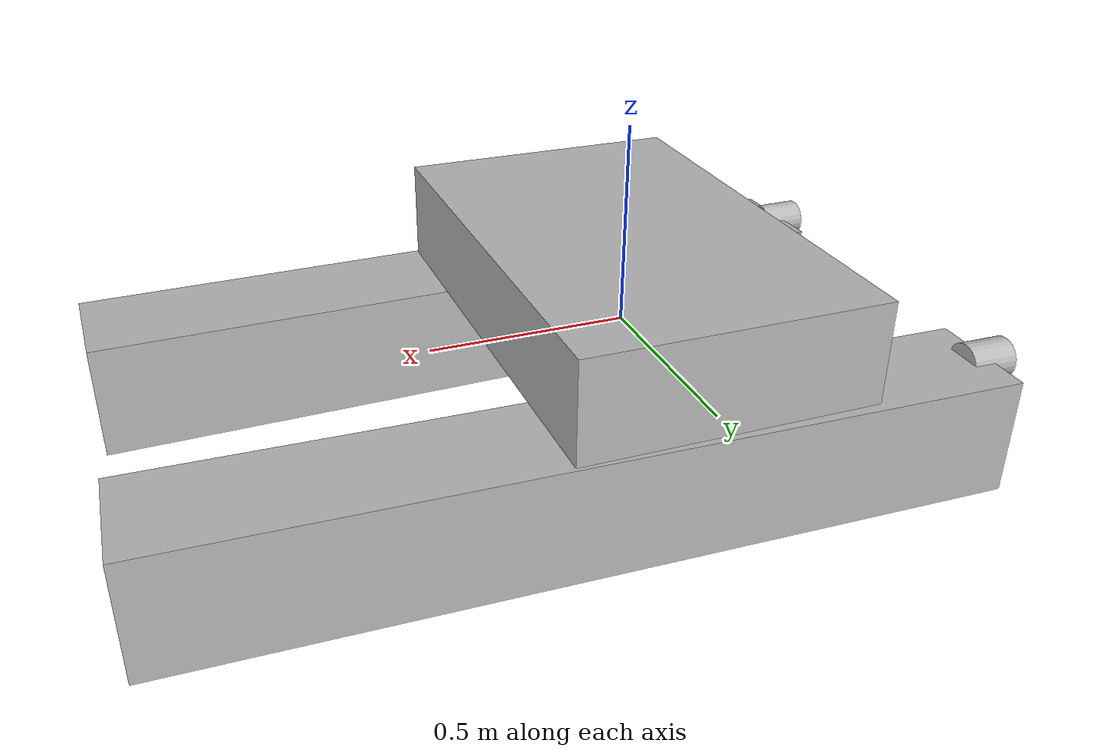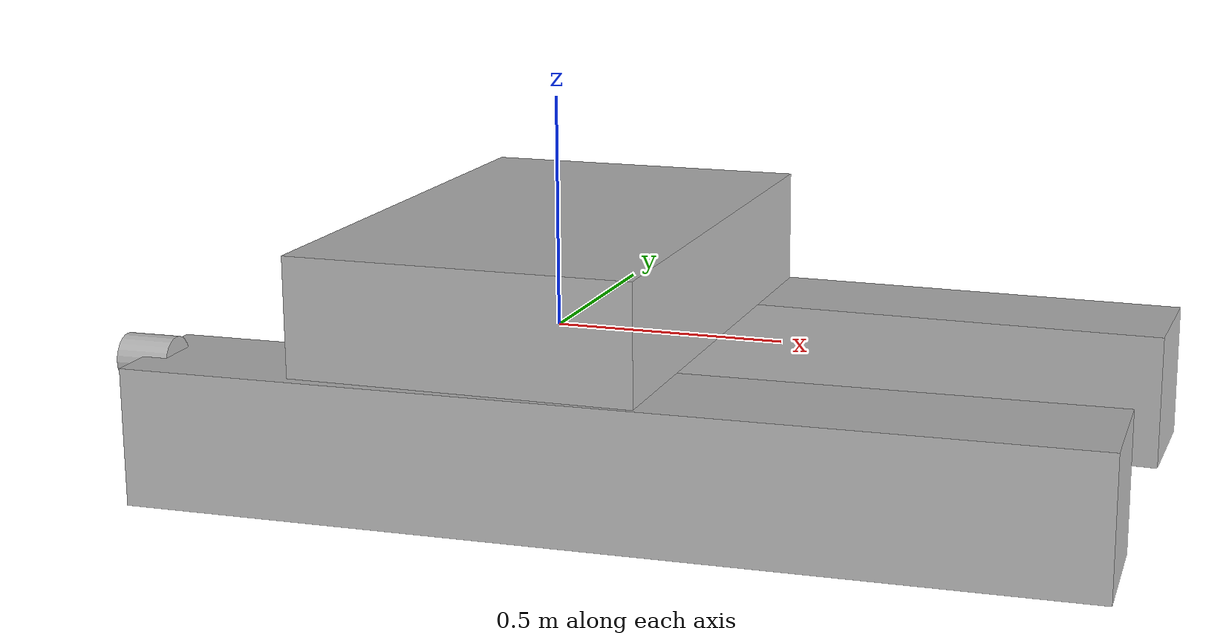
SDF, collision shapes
<sdf version='1.6'>
  <model name='aidboat'>
    <link name='base_link'>
      <pose frame=''>0 0 0 0 -0 0</pose>
      <inertial>
        <pose frame=''>0 0.26377 0.02064 0 -0 0</pose>
        <mass>32.712</mass>
        <inertia>
          <ixx>4.66251</ixx>
          <ixy>0</ixy>
          <ixz>0</ixz>
          <iyy>12.5763</iyy>
          <iyz>0</iyz>
          <izz>15.2205</izz>
        </inertia>
      </inertial>
      <collision name='base_link_fixed_joint_lump__top_base_collision'>
        <pose frame=''>0 0 0.1255 0 -0 0</pose>
        <geometry>
          <box>
            <size>0.73 1.15767 0.251</size>
          </box>
        </geometry>
      </collision>
      <collision name='base_link_fixed_joint_lump__right_hull_collision_1'>
        <pose frame=''>0.273998 0.447 -0.146 0 0 -0.024435</pose>
        <geometry>
          <box>
            <size>2.002 0.286 0.292</size>
          </box>
        </geometry>
      </collision>
      <collision name='base_link_fixed_joint_lump__left_hull_collision_2'>
        <pose frame=''>0.273998 -0.447 -0.146 0 -0 0.024435</pose>
        <geometry>
          <box>
            <size>2.002 0.286 0.292</size>
          </box>
        </geometry>
      </collision>
      <visual name='base_link_fixed_joint_lump__dummy_link_visual'>
        <pose frame=''>0 0 0.292 0 -0 0</pose>
        <geometry>
          <mesh>
            <scale>1 1 1</scale>
            <uri>model://aidboat_description/models/aidboat_base/mesh/AIDBOAT_Base.dae</uri>
          </mesh>
        </geometry>
      </visual>
    </link>
    <link name='left_engine_link'>
      <pose frame=''>-0.741 0.47 -0.016 0 -0 0</pose>
      <inertial>
        <pose frame=''>0 0 0 0 -0 0</pose>
        <mass>0.126</mass>
        <inertia>
          <ixx>2.90099e-05</ixx>
          <ixy>0</ixy>
          <ixz>0</ixz>
          <iyy>2.90099e-05</iyy>
          <iyz>0</iyz>
          <izz>0.0001575</izz>
        </inertia>
      </inertial>
      <collision name='left_engine_link_collision'>
        <pose frame=''>0.011 0 0 3.14159 1.57079 3.11716</pose>
        <geometry>
          <cylinder>
            <length>0.113</length>
            <radius>0.05</radius>
          </cylinder>
        </geometry>
        <surface>
          <contact>
            <ode/>
          </contact>
          <friction>
            <ode>
              <mu>0.2</mu>
              <mu2>0.2</mu2>
            </ode>
          </friction>
        </surface>
      </collision>
      <visual name='left_engine_link_visual'>
        <pose frame=''>0 0 0 0 0 -0.024435</pose>
        <geometry>
          <mesh>
            <scale>1 1 1</scale>
            <uri>model://aidboat_description/models/engine/mesh/left_engine.dae</uri>
          </mesh>
        </geometry>
        <material>
          <script>
            <uri>__default__</uri>
            <name>__default__</name>
          </script>
        </material>
      </visual>
      <gravity>1</gravity>
      <velocity_decay/>
    </link>
    <joint name='left_chasis_engine_joint' type='revolute'>
      <child>left_engine_link</child>
      <parent>base_link</parent>
      <axis>
        <xyz>1 0 0</xyz>
        <limit>
          <lower>0</lower>
          <upper>0</upper>
          <effort>0</effort>
          <velocity>0</velocity>
        </limit>
        <dynamics>
          <spring_reference>0</spring_reference>
          <spring_stiffness>0</spring_stiffness>
        </dynamics>
        <use_parent_model_frame>1</use_parent_model_frame>
      </axis>
    </joint>
    <link name='left_propeller_link'>
      <pose frame=''>-0.741 0.47 -0.016 0 -0 0</pose>
      <inertial>
        <pose frame=''>0 0 0 0 -0 0</pose>
        <mass>0.03</mass>
        <inertia>
          <ixx>5.8378e-07</ixx>
          <ixy>0</ixy>
          <ixz>0</ixz>
          <iyy>5.8378e-07</iyy>
          <iyz>0</iyz>
          <izz>2.17741e-05</izz>
        </inertia>
      </inertial>
      <collision name='left_propeller_link_collision'>
        <pose frame=''>0.011 0 0 3.14159 1.57079 3.11716</pose>
        <geometry>
          <cylinder>
            <length>0.03</length>
            <radius>0.0381</radius>
          </cylinder>
        </geometry>
        <surface>
          <contact>
            <ode/>
          </contact>
          <friction>
            <ode>
              <mu>0.2</mu>
              <mu2>0.2</mu2>
            </ode>
          </friction>
        </surface>
      </collision>
      <visual name='left_propeller_link_visual'>
        <pose frame=''>0 0 0 0 0 -0.024435</pose>
        <geometry>
          <mesh>
            <scale>1 1 1</scale>
            <uri>model://aidboat_description/models/propeller/mesh/left_propeller.dae</uri>
          </mesh>
        </geometry>
        <material>
          <script>
            <uri>__default__</uri>
            <name>__default__</name>
          </script>
        </material>
      </visual>
      <gravity>1</gravity>
      <velocity_decay/>
    </link>
    <joint name='left_engine_propeller_joint' type='revolute'>
      <child>left_propeller_link</child>
      <parent>left_engine_link</parent>
      <axis>
        <xyz>1 0 0</xyz>
        <limit>
          <lower>-1e+16</lower>
          <upper>1e+16</upper>
        </limit>
        <dynamics>
          <damping>0.05</damping>
          <friction>0.05</friction>
          <spring_reference>0</spring_reference>
          <spring_stiffness>0</spring_stiffness>
        </dynamics>
        <use_parent_model_frame>1</use_parent_model_frame>
      </axis>
    </joint>
    <link name='right_engine_link'>
      <pose frame=''>-0.741 -0.47 -0.016 0 -0 0</pose>
      <inertial>
        <pose frame=''>0 0 0 0 -0 0</pose>
        <mass>0.126</mass>
        <inertia>
          <ixx>2.90099e-05</ixx>
          <ixy>0</ixy>
          <ixz>0</ixz>
          <iyy>2.90099e-05</iyy>
          <iyz>0</iyz>
          <izz>0.0001575</izz>
        </inertia>
      </inertial>
      <collision name='right_engine_link_collision'>
        <pose frame=''>0.011 0 0 -3.14159 1.57079 -3.11716</pose>
        <geometry>
          <cylinder>
            <length>0.113</length>
            <radius>0.05</radius>
          </cylinder>
        </geometry>
        <surface>
          <contact>
            <ode/>
          </contact>
          <friction>
            <ode>
              <mu>0.2</mu>
              <mu2>0.2</mu2>
            </ode>
          </friction>
        </surface>
      </collision>
      <visual name='right_engine_link_visual'>
        <pose frame=''>0 0 0 0 -0 0.024435</pose>
        <geometry>
          <mesh>
            <scale>1 1 1</scale>
            <uri>model://aidboat_description/models/engine/mesh/right_engine.dae</uri>
          </mesh>
        </geometry>
        <material>
          <script>
            <uri>__default__</uri>
            <name>__default__</name>
          </script>
        </material>
      </visual>
      <gravity>1</gravity>
      <velocity_decay/>
    </link>
    <joint name='right_chasis_engine_joint' type='revolute'>
      <child>right_engine_link</child>
      <parent>base_link</parent>
      <axis>
        <xyz>1 0 0</xyz>
        <limit>
          <lower>0</lower>
          <upper>0</upper>
          <effort>0</effort>
          <velocity>0</velocity>
        </limit>
        <dynamics>
          <spring_reference>0</spring_reference>
          <spring_stiffness>0</spring_stiffness>
        </dynamics>
        <use_parent_model_frame>1</use_parent_model_frame>
      </axis>
    </joint>
    <link name='right_propeller_link'>
      <pose frame=''>-0.741 -0.47 -0.016 0 -0 0</pose>
      <inertial>
        <pose frame=''>0 0 0 0 -0 0</pose>
        <mass>0.03</mass>
        <inertia>
          <ixx>5.8378e-07</ixx>
          <ixy>0</ixy>
          <ixz>0</ixz>
          <iyy>5.8378e-07</iyy>
          <iyz>0</iyz>
          <izz>2.17741e-05</izz>
        </inertia>
      </inertial>
      <collision name='right_propeller_link_collision'>
        <pose frame=''>0.011 0 0 -3.14159 1.57079 -3.11716</pose>
        <geometry>
          <cylinder>
            <length>0.03</length>
            <radius>0.0381</radius>
          </cylinder>
        </geometry>
        <surface>
          <contact>
            <ode/>
          </contact>
          <friction>
            <ode>
              <mu>0.2</mu>
              <mu2>0.2</mu2>
            </ode>
          </friction>
        </surface>
      </collision>
      <visual name='right_propeller_link_visual'>
        <pose frame=''>0 0 0 0 -0 0.024435</pose>
        <geometry>
          <mesh>
            <scale>1 1 1</scale>
            <uri>model://aidboat_description/models/propeller/mesh/right_propeller.dae</uri>
          </mesh>
        </geometry>
        <material>
          <script>
            <uri>__default__</uri>
            <name>__default__</name>
          </script>
        </material>
      </visual>
      <gravity>1</gravity>
      <velocity_decay/>
    </link>
    <joint name='right_engine_propeller_joint' type='revolute'>
      <child>right_propeller_link</child>
      <parent>right_engine_link</parent>
      <axis>
        <xyz>1 0 0</xyz>
        <limit>
          <lower>-1e+16</lower>
          <upper>1e+16</upper>
        </limit>
        <dynamics>
          <damping>0.05</damping>
          <friction>0.05</friction>
          <spring_reference>0</spring_reference>
          <spring_stiffness>0</spring_stiffness>
        </dynamics>
        <use_parent_model_frame>1</use_parent_model_frame>
      </axis>
    </joint>
    <plugin name='usv_dynamics_aidboat' filename='libusv_gazebo_dynamics_plugin.so'>
      <bodyName>base_link</bodyName>
      <waterLevel>0</waterLevel>
      <waterDensity>997.8</waterDensity>
      <xDotU>0.0</xDotU>
      <yDotV>0.0</yDotV>
      <nDotR>0.0</nDotR>
      <xU>51.3</xU>
      <xUU>72.4</xUU>
      <yV>40.0</yV>
      <yVV>0.0</yVV>
      <zW>500.0</zW>
      <kP>50.0</kP>
      <mQ>50.0</mQ>
      <nR>400.0</nR>
      <nRR>0.0</nRR>
      <hullRadius>0.213</hullRadius>
      <boatWidth>1.15767</boatWidth>
      <boatLength>2.05992</boatLength>
      <length_n>2</length_n>
      <wave_model>ocean_waves</wave_model>
    </plugin>
    <static>0</static>
    <plugin name='aidboat_gazebo_thrust' filename='libusv_gazebo_thrust_plugin.so'>
      <cmdTimeout>1.0</cmdTimeout>
      <thruster>
        <linkName>left_propeller_link</linkName>
        <propJointName>left_engine_propeller_joint</propJointName>
        <engineJointName>left_chasis_engine_joint</engineJointName>
        <cmdTopic>left_thrust_cmd</cmdTopic>
        <angleTopic>left_thrust_angle</angleTopic>
        <enableAngle>0</enableAngle>
      </thruster>
      <thruster>
        <linkName>right_propeller_link</linkName>
        <propJointName>right_engine_propeller_joint</propJointName>
        <engineJointName>right_chasis_engine_joint</engineJointName>
        <cmdTopic>right_thrust_cmd</cmdTopic>
        <angleTopic>right_thrust_angle</angleTopic>
        <enableAngle>0</enableAngle>
      </thruster>
    </plugin>
  </model>
</sdf>
